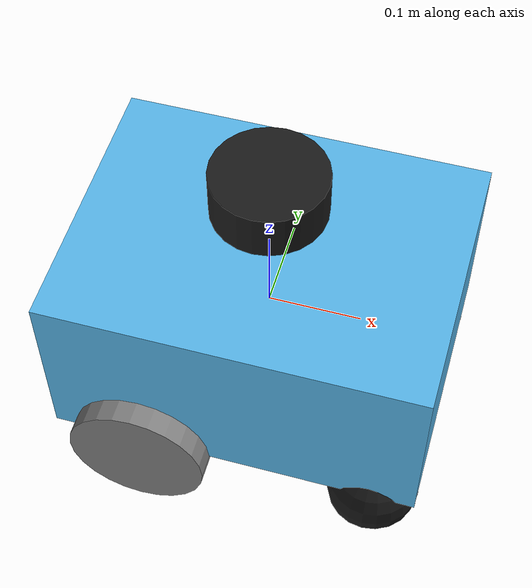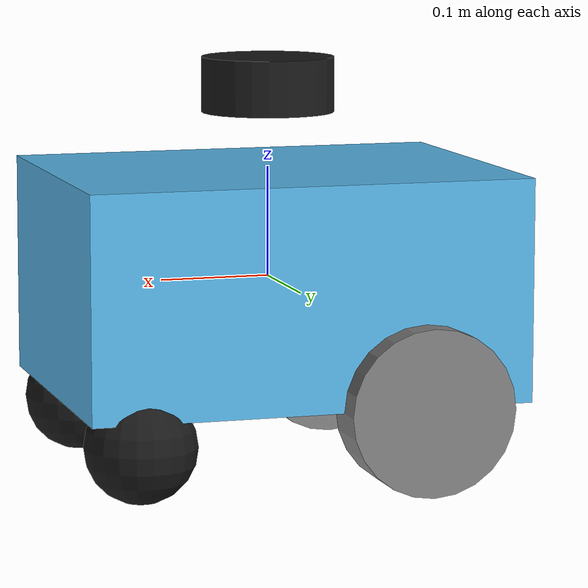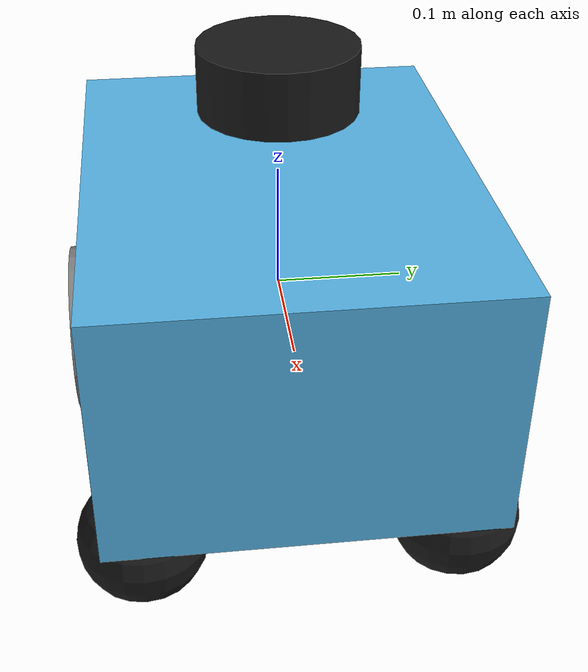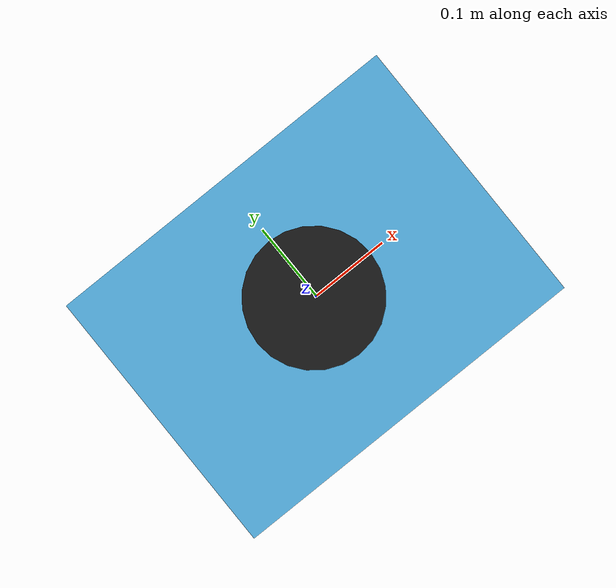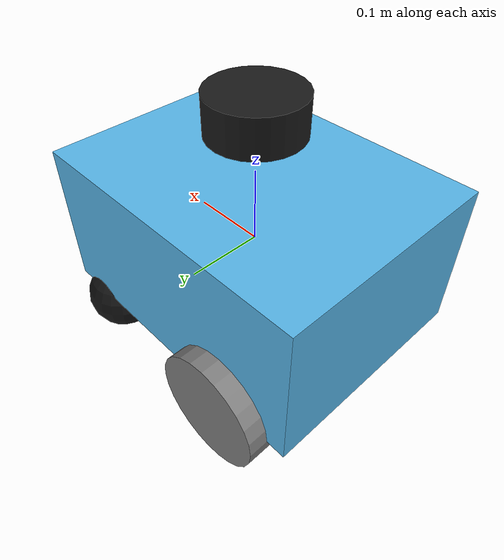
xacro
<?xml version="1.0"?>
<robot xmlns:xacro="http://www.ros.org/wiki/xacro" name="diy_robot">

    <link name="base_footprint"/>

    <joint name="base_footprint_joint" type="fixed">
        <parent link="base_footprint"/>
        <child link="base_link"/>
        <origin xyz="0 0 0" rpy="0 0 0"/>
    </joint>

    <link name="base_link">
        <visual>
            <geometry>
                <box size="0.4 0.3 0.2"/>
            </geometry>
        </visual>
        <collision>
            <geometry>
                <box size="0.4 0.3 0.2"/>
            </geometry>
        </collision>
        <inertial>
            <mass value="8.0"/>
            <origin xyz="0 0 0" rpy="0 0 0"/>
            <inertia ixx="0.0533" ixy="0.0" ixz="0.0" iyy="0.08" iyz="0.0" izz="0.1333"/>
        </inertial>
    </link>

    <link name="laser_frame">
        <visual>
            <geometry>
                <cylinder radius="0.06" length="0.05"/>
            </geometry>
            <material name="black">
                <color rgba="0.1 0.1 0.1 1"/>
            </material>
        </visual>
        <collision>
            <geometry>
                <cylinder radius="0.06" length="0.05"/>
            </geometry>
        </collision>
        <inertial>
            <mass value="0.3"/>
            <origin xyz="0 0 0" rpy="0 0 0"/>
            <inertia ixx="0.0003" ixy="0.0" ixz="0.0" iyy="0.0003" iyz="0.0" izz="0.0003"/>
        </inertial>
    </link>

    <joint name="laser_joint" type="fixed">
        <parent link="base_link"/>
        <child link="laser_frame"/>
        <origin xyz="0 0 0.175" rpy="0 0 0"/>
    </joint>

    <!-- Front Caster Supports -->
    <link name="front_left_support">
        <visual>
            <geometry>
                <box size="0.02 0.02 0.15"/>
            </geometry>
            <material name="gray">
                <color rgba="0.7 0.7 0.7 1"/>
            </material>
        </visual>
        <collision>
            <geometry>
                <box size="0.02 0.02 0.15"/>
            </geometry>
        </collision>
        <inertial>
            <mass value="0.2"/>
            <origin xyz="0 0 0" rpy="0 0 0"/>
            <inertia ixx="0.0001" ixy="0.0" ixz="0.0" iyy="0.0001" iyz="0.0" izz="0.0001"/>
        </inertial>
    </link>

    <link name="front_right_support">
        <visual>
            <geometry>
                <box size="0.02 0.02 0.15"/>
            </geometry>
            <material name="gray">
                <color rgba="0.7 0.7 0.7 1"/>
            </material>
        </visual>
        <collision>
            <geometry>
                <box size="0.02 0.02 0.15"/>
            </geometry>
        </collision>
        <inertial>
            <mass value="0.2"/>
            <origin xyz="0 0 0" rpy="0 0 0"/>
            <inertia ixx="0.0001" ixy="0.0" ixz="0.0" iyy="0.0001" iyz="0.0" izz="0.0001"/>
        </inertial>
    </link>

    <joint name="front_left_support_joint" type="fixed">
        <parent link="base_link"/>
        <child link="front_left_support"/>
        <origin xyz="0.15 0.12 -0.025" rpy="0 0 0"/>
    </joint>

    <joint name="front_right_support_joint" type="fixed">
        <parent link="base_link"/>
        <child link="front_right_support"/>
        <origin xyz="0.15 -0.12 -0.025" rpy="0 0 0"/>
    </joint>

    <!-- Front Caster Wheels -->
    <link name="front_left_caster">
        <visual>
            <geometry>
                <sphere radius="0.05"/>
            </geometry>
            <material name="black">
                <color rgba="0.1 0.1 0.1 1"/>
            </material>
        </visual>
        <collision>
            <geometry>
                <sphere radius="0.05"/>
            </geometry>
        </collision>
        <inertial>
            <mass value="0.5"/>
            <origin xyz="0 0 0" rpy="0 0 0"/>
            <inertia ixx="0.0002" ixy="0.0" ixz="0.0" iyy="0.0002" iyz="0.0" izz="0.0002"/>
        </inertial>
    </link>

    <link name="front_right_caster">
        <visual>
            <geometry>
                <sphere radius="0.05"/>
            </geometry>
            <material name="black">
                <color rgba="0.1 0.1 0.1 1"/>
            </material>
        </visual>
        <collision>
            <geometry>
                <sphere radius="0.05"/>
            </geometry>
        </collision>
        <inertial>
            <mass value="0.5"/>
            <origin xyz="0 0 0" rpy="0 0 0"/>
            <inertia ixx="0.0002" ixy="0.0" ixz="0.0" iyy="0.0002" iyz="0.0" izz="0.0002"/>
        </inertial>
    </link>

    <joint name="front_left_caster_joint" type="fixed">
        <parent link="front_left_support"/>
        <child link="front_left_caster"/>
        <origin xyz="0 0 -0.1" rpy="0 0 0"/>
    </joint>

    <joint name="front_right_caster_joint" type="fixed">
        <parent link="front_right_support"/>
        <child link="front_right_caster"/>
        <origin xyz="0 0 -0.1" rpy="0 0 0"/>
    </joint>

    <!-- Rear Wheels (Differential Drive) -->
    <link name="rear_left_wheel">
        <visual>
            <geometry>
                <cylinder radius="0.075" length="0.05"/>
            </geometry>
            <material name="gray">
                <color rgba="0.5 0.5 0.5 1"/>
            </material>
        </visual>
        <collision>
            <geometry>
                <cylinder radius="0.075" length="0.05"/>
            </geometry>
        </collision>
        <inertial>
            <mass value="1.0"/>
            <origin xyz="0 0 0" rpy="0 0 0"/>
            <inertia ixx="0.0014" ixy="0.0" ixz="0.0" iyy="0.0014" iyz="0.0" izz="0.0028"/>
        </inertial>
    </link>

    <link name="rear_right_wheel">
        <visual>
            <geometry>
                <cylinder radius="0.075" length="0.05"/>
            </geometry>
            <material name="gray">
                <color rgba="0.5 0.5 0.5 1"/>
            </material>
        </visual>
        <collision>
            <geometry>
                <cylinder radius="0.075" length="0.05"/>
            </geometry>
        </collision>
        <inertial>
            <mass value="1.0"/>
            <origin xyz="0 0 0" rpy="0 0 0"/>
            <inertia ixx="0.0014" ixy="0.0" ixz="0.0" iyy="0.0014" iyz="0.0" izz="0.0028"/>
        </inertial>
    </link>

    <joint name="rear_left_wheel_joint" type="continuous">
        <parent link="base_link"/>
        <child link="rear_left_wheel"/>
        <origin xyz="-0.1 0.15 -0.1" rpy="1.5708 0 0"/>
        <axis xyz="0 1 0"/>
    </joint>

    <joint name="rear_right_wheel_joint" type="continuous">
        <parent link="base_link"/>
        <child link="rear_right_wheel"/>
        <origin xyz="-0.1 -0.15 -0.1" rpy="1.5708 0 0"/>
        <axis xyz="0 1 0"/>
    </joint>

    <gazebo reference="laser_frame">
        <sensor name="lidar" type="ray">
            <pose>0 0 0 0 0 0</pose>
            <visualize>true</visualize>
            <update_rate>10</update_rate>
            <ray>
                <scan>
                    <horizontal>
                        <samples>360</samples>
                        <min_angle>-3.14</min_angle>
                        <max_angle>3.14</max_angle>
                    </horizontal>
                </scan>
                <range>
                    <min>0.3</min>
                    <max>12</max>
                </range>
            </ray>
            <plugin name="laser_controller" filename="libgazebo_ros_ray_sensor.so">
                <ros>
                    <argument>~/out:=scan</argument>
                </ros>
                <output_type>sensor_msgs/LaserScan</output_type>
                <frame_name>laser_frame</frame_name>
            </plugin>
        </sensor>
    </gazebo>

    <gazebo>
        <plugin name="diff_drive" filename="libgazebo_ros_diff_drive.so">
            <left_joint>rear_left_wheel_joint</left_joint>
            <right_joint>rear_right_wheel_joint</right_joint>

            <wheel_diameter>0.15</wheel_diameter>
            <wheel_separation>0.3</wheel_separation>

            <max_wheel_torque>200</max_wheel_torque>
            <max_wheel_acceleration>10.0</max_wheel_acceleration>

            <odometry_frame>odom</odometry_frame>
            <robot_base_frame>base_link</robot_base_frame>

            <publish_odom>true</publish_odom>
            <publish_odom_tf>true</publish_odom_tf>
            <publish_wheel_tf>true</publish_wheel_tf>
        </plugin>
    </gazebo>
</robot>
